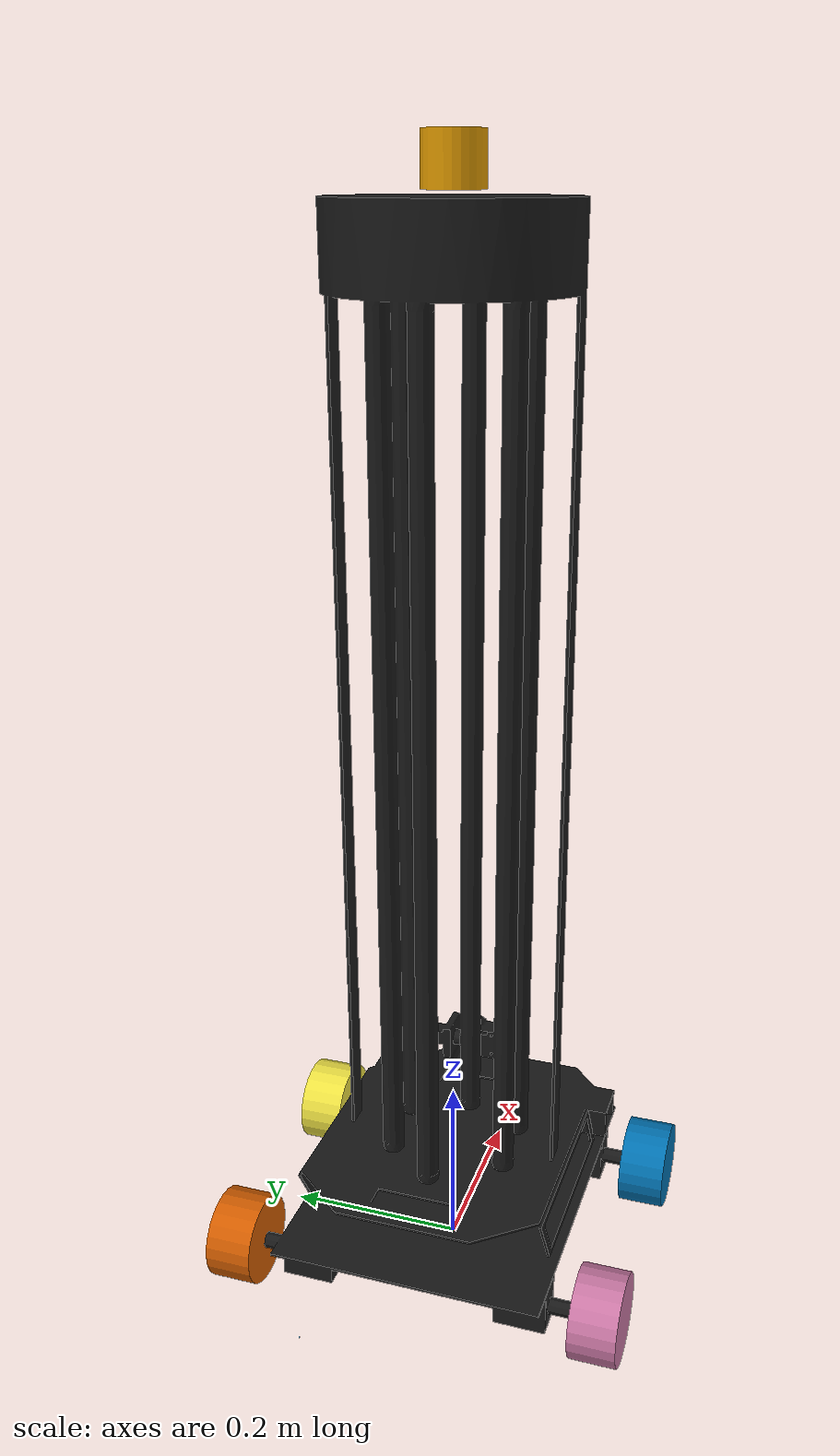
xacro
<?xml version="1.0"?>

<robot name="omni_xl" xmlns:xacro="http://www.ros.org/wiki/xacro">

	<!-- Import omni XL wheels -->
    <xacro:include filename="$(find omni_description)/urdf/base/omni_base.gazebo.xacro" />
	<xacro:include filename="$(find omni_description)/urdf/wheels/omni_wheel.urdf.xacro" />
	<xacro:include filename="$(find omni_description)/urdf/base/omni_base.urdf.xacro" />

    <xacro:property name="PI" value="3.1415926535897931" />
	<!-- Wheel parameters -->
	<xacro:property name="wheel_offset_x" value="0.135" />    <!-- x,y,z in translation from base_link to the center of the wheel -->
	<xacro:property name="wheel_offset_y" value="0.2075" />
	<xacro:property name="wheel_offset_z" value="0.0" />

    <xacro:property name="wheel_radius" value="0.05" />
    <xacro:property name="wheel_height" value="0.052" />
    <xacro:property name="wheel_mass" value="1.8" /> <!-- in kg-->

    <xacro:macro name="cylinder_inertia" params="m r h">
    <inertia  ixx="${m*(3*r*r+h*h)/12}" ixy = "0" ixz = "0"
              iyy="${m*r*r/2}" iyz = "0"
              izz="${m*(3*r*r+h*h)/12}" />
    </xacro:macro>

    <link name="sensor_laser">
        <inertial>
            <origin xyz="0 0 0" rpy="0 0 1.5708"/>
            <mass value="1" />
            <inertia ixx="0.001458" ixy = "0" ixz = "0"
                iyy="0.001458" iyz = "0"
                izz="0.00125"/>
        </inertial>

        <visual>
            <origin xyz="0 0 0" rpy="0 0 1.5708" />
            <geometry>
                <cylinder radius="0.03" length="0.05"/>
            </geometry>
        </visual>

        <collision>
            <origin xyz="0 0 0" rpy="0 0 1.5708"/>
            <geometry>
                <cylinder radius="0.05" length="0.05"/>
            </geometry>
        </collision>
    </link>

    <joint name="joint_sensor_laser" type="fixed">
        <origin xyz="0 0 1.1348" rpy="0 0 0"/>
        <parent link="omni_base_link"/>
        <child link="sensor_laser"/>
    </joint>

	<xacro:macro name="robot">

        <xacro:omni_steering/>
		<xacro:omni_base/>

		<xacro:omni_wheel prefix="omni_front_left" parent="omni_base_link" reflect="true">
			<origin xyz="${wheel_offset_x} ${wheel_offset_y} ${wheel_offset_z}" rpy="0 0 0"/>
		</xacro:omni_wheel>

		<xacro:omni_wheel prefix="omni_front_right" parent="omni_base_link" reflect="false">
			<origin xyz="${wheel_offset_x} -${wheel_offset_y} ${wheel_offset_z}" rpy="0 0 0"/>
		</xacro:omni_wheel>

		<xacro:omni_wheel prefix="omni_back_left" parent="omni_base_link" reflect="true">
			<origin xyz="-${wheel_offset_x} ${wheel_offset_y} ${wheel_offset_z}" rpy="0 0 0"/>
		</xacro:omni_wheel>

		<xacro:omni_wheel prefix="omni_back_right" parent="omni_base_link" reflect="false">
			<origin xyz="-${wheel_offset_x} -${wheel_offset_y} ${wheel_offset_z}" rpy="0 0 0"/>
		</xacro:omni_wheel>

   </xacro:macro>

   <xacro:robot/>

</robot>

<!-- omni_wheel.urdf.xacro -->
<robot name="wheel" xmlns:xacro="http://www.ros.org/wiki/xacro">

  <xacro:property name="PI" value="3.1415926535897931" />

  <!-- Wheels -->
  <xacro:property name="wheel_radius" value="0.05" />
  <xacro:property name="wheel_height" value="0.052" />
  <xacro:property name="wheel_mass" value="1.8" /> <!-- in kg-->

  <xacro:macro name="cylinder_inertia" params="m r h">
    <inertia  ixx="${m*(3*r*r+h*h)/12}" ixy = "0" ixz = "0"
              iyy="${m*r*r/2}" iyz = "0"
              izz="${m*(3*r*r+h*h)/12}" />
  </xacro:macro>

  <xacro:macro name="omni_wheel" params="prefix parent *origin reflect">

    <joint name="${prefix}_wheel_joint" type="continuous">
      <parent link="${parent}"/>
      <child link="${prefix}_wheel_link"/>
      <xacro:insert_block name="origin" />
      <axis xyz="0 1 0" rpy="0 0 0" />
      <limit effort="100" velocity="100"/>
      <joint_properties damping="0.0" friction="0.0"/>
    </joint>

    <link name="${prefix}_wheel_link">
      <visual>
        <origin xyz="0 0 0" rpy="1.5708 0 0" />
        <xacro:if value="${reflect}">
          <geometry>
                <cylinder length="0.052" radius="0.05"/>
          </geometry>
        </xacro:if>
        <xacro:unless value="${reflect}">
            <geometry>
                <cylinder length="0.052" radius="0.05"/>
            </geometry>
	</xacro:unless>
      </visual>

      <collision>
	<origin xyz="0 0 0" rpy="${PI/2} 0 0" />
        <geometry>
	    <cylinder length="${wheel_height}" radius="${wheel_radius}" />
        </geometry>
      </collision>

      <inertial>
        <mass value="${wheel_mass}" />
        <origin xyz="0 0 0" />
        <cylinder_inertia  m="${wheel_mass}" r="${wheel_radius}" h="${wheel_height}" />
      </inertial>
    </link>

    <!-- Transmission is important to link the joints and the controller (see omni_xl_control/config/omni_xl_control.yaml)-->
    <transmission name="${prefix}_wheel_joint_trans">
      <type>transmission_interface/SimpleTransmission</type>
      <joint name="${prefix}_wheel_joint" >
        <hardwareInterface>hardware_interface/VelocityJointInterface</hardwareInterface>
      </joint>
      <actuator name="${prefix}_wheel_joint_motor">
         <mechanicalReduction>1</mechanicalReduction>
      </actuator>
    </transmission>

  </xacro:macro>
</robot>

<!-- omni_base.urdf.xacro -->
<robot name="omni_xl" xmlns:xacro="http://www.ros.org/wiki/xacro">

  <xacro:macro name="omni_base">

	  <!-- Robot mechanical and motor parameters -->
	  <xacro:property name="PI" value="3.1415926535897931"/>
	  <xacro:property name="wheel_width" value="0.175" />

	<!-- BASE FOOTPRINT -->
		<link name="omni_base_footprint">
		  <visual>
			  <origin xyz="-0.215732 0.108848 0" rpy="0 0 1.5708" />
			  <geometry>
				 <box size="0.001 0.001 0.001" />
			  </geometry>
		  </visual>
		</link>

		<joint name="omni_base_footprint_joint" type="fixed">
		  <origin xyz="0 0 ${wheel_radius}" rpy="0 0 0" /> <!-- ${wheel_radius} property must be defined inside wheel description -->
		  <parent link="omni_base_footprint"/>
		  <child link="omni_base_link" />
		</joint>

  <!-- BASE_LINK -->
  <link name="omni_base_link">
    <inertial>
        <origin xyz="0.108848 -0.215732 -0.05" rpy="0 0 1.5708"/>
        <mass value="7" />
        <inertia ixx="1392.536103" ixy="119.858807" ixz="-302.709754" iyy="1477.690202" iyz="144.763107" izz="351.401815"/>
    </inertial>

    <collision>
        <origin rpy="0.0 0 1.5708" xyz="0.108848 -0.215732 -0.05"/>
        <geometry>
            <mesh filename="package://omni_description/models/robot_base1.stl" scale="0.01 0.01 0.01"/>
        </geometry>
    </collision>

    <visual>
        <origin rpy="0.0 0 1.5708" xyz="-0.108848 -0.215732 -0.05"/>
        <geometry>
            <mesh filename="package://omni_description/models/robot_base1.stl" scale="0.01 0.01 0.01"/>
        </geometry>
        <material name="darkgrey">
         <color rgba="0.1 0.1 0.1 1"/>
       </material>
    </visual>

  </link>

  </xacro:macro>

</robot>
